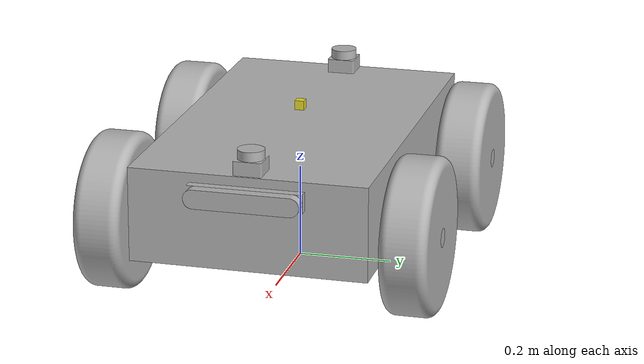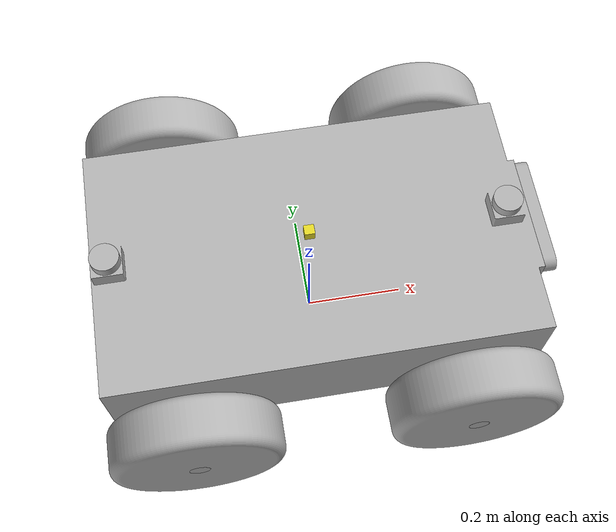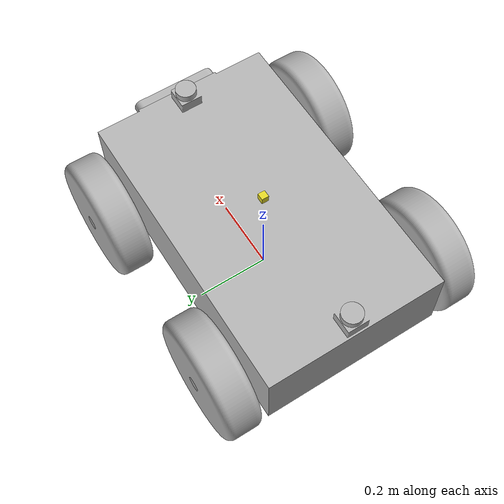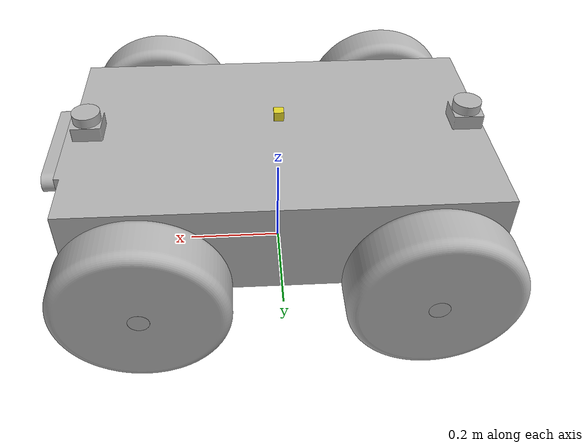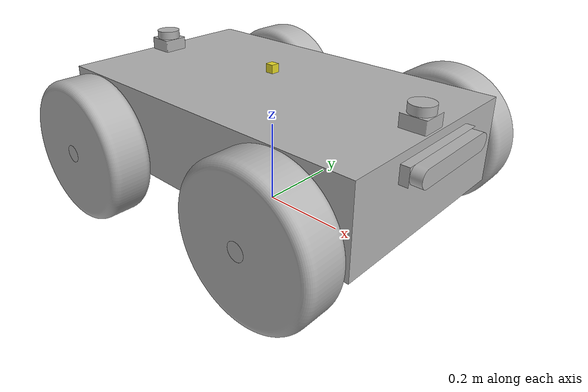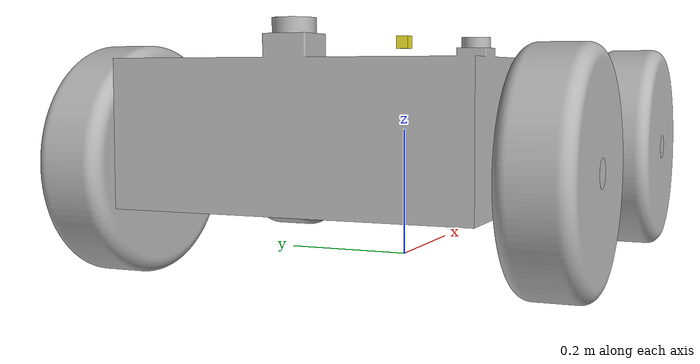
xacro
<?xml version="1.0" ?>
<robot name="susag_updated_model" xmlns:xacro="http://www.ros.org/wiki/xacro">

<xacro:include filename="$(find susag_updated_model_description)/urdf/materials.xacro" />
<xacro:include filename="$(find susag_updated_model_description)/urdf/susag_updated_model.trans" />
<xacro:include filename="$(find susag_updated_model_description)/urdf/susag_updated_model.gazebo" />
<link name="base_link">
  <inertial>
    <origin xyz="0.0009712747698901402 0.0 0.21010916566289983" rpy="0 0 0"/>
    <mass value="2.0"/>
    <inertia ixx="10.229874" iyy="13.7797" izz="16.621337" ixy="0.0" iyz="-0.0" ixz="-0.102671"/>
  </inertial>
  <visual>
    <origin xyz="0 0 0" rpy="0 0 0"/>
    <geometry>
      <mesh filename="file://$(find susag_updated_model_description)/meshes/base_link.stl" scale="0.001 0.001 0.001"/>
    </geometry>
    <material name="silver"/>
  </visual>
  <collision>
    <origin xyz="0 0 0" rpy="0 0 0"/>
    <geometry>
      <mesh filename="file://$(find susag_updated_model_description)/meshes/base_link.stl" scale="0.001 0.001 0.001"/>
    </geometry>
  </collision>
</link>

<link name="rear_right_wheel_1">
  <inertial>
    <origin xyz="-3.1807889655510735e-14 0.04999999999999999 -5.551115123125783e-17" rpy="0 0 0"/>
    <mass value="4.0"/>
    <inertia ixx="0.033244" iyy="0.061555" izz="0.033244" ixy="0.0" iyz="-0.0" ixz="0.0"/>
  </inertial>
  <visual>
    <origin xyz="0.2665 0.37 -0.165" rpy="0 0 0"/>
    <geometry>
      <mesh filename="file://$(find susag_updated_model_description)/meshes/rear_right_wheel_1.stl" scale="0.001 0.001 0.001"/>
    </geometry>
    <material name="silver"/>
  </visual>
  <collision>
    <origin xyz="0.2665 0.37 -0.165" rpy="0 0 0"/>
    <geometry>
      <mesh filename="file://$(find susag_updated_model_description)/meshes/rear_right_wheel_1.stl" scale="0.001 0.001 0.001"/>
    </geometry>
  </collision>
</link>

<link name="front_right_wheel_1">
  <inertial>
    <origin xyz="8.718026300869042e-14 0.024999999999999967 0.0" rpy="0 0 0"/>
    <mass value="4.0"/>
    <inertia ixx="0.033244" iyy="0.061555" izz="0.033244" ixy="-0.0" iyz="-0.0" ixz="0.0"/>
  </inertial>
  <visual>
    <origin xyz="-0.2665 0.37 -0.165" rpy="0 0 0"/>
    <geometry>
      <mesh filename="file://$(find susag_updated_model_description)/meshes/front_right_wheel_1.stl" scale="0.001 0.001 0.001"/>
    </geometry>
    <material name="silver"/>
  </visual>
  <collision>
    <origin xyz="-0.2665 0.37 -0.165" rpy="0 0 0"/>
    <geometry>
      <mesh filename="file://$(find susag_updated_model_description)/meshes/front_right_wheel_1.stl" scale="0.001 0.001 0.001"/>
    </geometry>
  </collision>
</link>

<link name="front_left_wheel_1">
  <inertial>
    <origin xyz="8.718026300869042e-14 -0.025000000000000078 0.0" rpy="0 0 0"/>
    <mass value="4.0"/>
    <inertia ixx="0.033244" iyy="0.061555" izz="0.033244" ixy="-0.0" iyz="-0.0" ixz="0.0"/>
  </inertial>
  <visual>
    <origin xyz="-0.2665 -0.37 -0.165" rpy="0 0 0"/>
    <geometry>
      <mesh filename="file://$(find susag_updated_model_description)/meshes/front_left_wheel_1.stl" scale="0.001 0.001 0.001"/>
    </geometry>
    <material name="silver"/>
  </visual>
  <collision>
    <origin xyz="-0.2665 -0.37 -0.165" rpy="0 0 0"/>
    <geometry>
      <mesh filename="file://$(find susag_updated_model_description)/meshes/front_left_wheel_1.stl" scale="0.001 0.001 0.001"/>
    </geometry>
  </collision>
</link>

<link name="rear_left_wheel_1">
  <inertial>
    <origin xyz="-3.186340080674199e-14 -0.04999999999999999 -5.551115123125783e-17" rpy="0 0 0"/>
    <mass value="4.0"/>
    <inertia ixx="0.033244" iyy="0.061555" izz="0.033244" ixy="0.0" iyz="-0.0" ixz="0.0"/>
  </inertial>
  <visual>
    <origin xyz="0.2665 -0.37 -0.165" rpy="0 0 0"/>
    <geometry>
      <mesh filename="file://$(find susag_updated_model_description)/meshes/rear_left_wheel_1.stl" scale="0.001 0.001 0.001"/>
    </geometry>
    <material name="silver"/>
  </visual>
  <collision>
    <origin xyz="0.2665 -0.37 -0.165" rpy="0 0 0"/>
    <geometry>
      <mesh filename="file://$(find susag_updated_model_description)/meshes/rear_left_wheel_1.stl" scale="0.001 0.001 0.001"/>
    </geometry>
  </collision>
</link>

<link name="real_sense_1">
  <inertial>
    <origin xyz="0.012500000000000011 0.0 0.0" rpy="0 0 0"/>
    <mass value="0.1"/>
    <inertia ixx="0.008377" iyy="0.000329" izz="0.008237" ixy="0.0" iyz="0.0" ixz="-0.0"/>
  </inertial>
  <visual>
    <origin xyz="-0.436 -0.0 -0.27" rpy="0 0 0"/>
    <geometry>
      <mesh filename="file://$(find susag_updated_model_description)/meshes/real_sense_1.stl" scale="0.001 0.001 0.001"/>
    </geometry>
    <material name="silver"/>
  </visual>
  <collision>
    <origin xyz="-0.436 -0.0 -0.27" rpy="0 0 0"/>
    <geometry>
      <mesh filename="file://$(find susag_updated_model_description)/meshes/real_sense_1.stl" scale="0.001 0.001 0.001"/>
    </geometry>
  </collision>
</link>

<link name="rear_lidar_1">
  <inertial>
    <origin xyz="0.0 0.0 0.009999999999999898" rpy="0 0 0"/>
    <mass value="0.1"/>
    <inertia ixx="8.9e-05" iyy="8.9e-05" izz="0.000152" ixy="-0.0" iyz="0.0" ixz="0.0"/>
  </inertial>
  <visual>
    <origin xyz="0.381 -0.0 -0.34" rpy="0 0 0"/>
    <geometry>
      <mesh filename="file://$(find susag_updated_model_description)/meshes/rear_lidar_1.stl" scale="0.001 0.001 0.001"/>
    </geometry>
    <material name="silver"/>
  </visual>
  <collision>
    <origin xyz="0.381 -0.0 -0.34" rpy="0 0 0"/>
    <geometry>
      <mesh filename="file://$(find susag_updated_model_description)/meshes/rear_lidar_1.stl" scale="0.001 0.001 0.001"/>
    </geometry>
  </collision>
</link>

<link name="front_lidar_1">
  <inertial>
    <origin xyz="5.6773423184885985e-09 -5.7697137078703364e-18 0.009999999999999953" rpy="0 0 0"/>
    <mass value="0.1"/>
    <inertia ixx="8.9e-05" iyy="8.9e-05" izz="0.000152" ixy="-0.0" iyz="0.0" ixz="-0.0"/>
  </inertial>
  <visual>
    <origin xyz="-0.381 -0.0 -0.34" rpy="0 0 0"/>
    <geometry>
      <mesh filename="file://$(find susag_updated_model_description)/meshes/front_lidar_1.stl" scale="0.001 0.001 0.001"/>
    </geometry>
    <material name="silver"/>
  </visual>
  <collision>
    <origin xyz="-0.381 -0.0 -0.34" rpy="0 0 0"/>
    <geometry>
      <mesh filename="file://$(find susag_updated_model_description)/meshes/front_lidar_1.stl" scale="0.001 0.001 0.001"/>
    </geometry>
  </collision>
</link>

<link name="imu_link">
  <inertial>
    <mass value="0.01"/>
    <origin xyz="0 0 0" rpy="0 0 0"/>
    <inertia ixx="1e-6" ixy="0" ixz="0" iyy="1e-6" iyz="0" izz="1e-6"/>
  </inertial>
  <visual>
    <origin xyz="0 0 0" rpy="0 0 0"/>
    <geometry>
      <box size="0.02 0.02 0.01"/>
    </geometry>
    <material name="silver"/>
  </visual>
  <collision>
    <origin xyz="0 0 0" rpy="0 0 0"/>
    <geometry>
      <box size="0.02 0.02 0.01"/>
    </geometry>
  </collision>
</link>

<link name="laser_center_link">
  <inertial>
    <mass value="0.001"/>
    <origin xyz="0 0 0" rpy="0 0 0"/>
    <inertia ixx="1e-6" ixy="0" ixz="0" iyy="1e-6" iyz="0" izz="1e-6"/>
  </inertial>
  <visual>
    <origin xyz="0 0 0" rpy="0 0 0"/>
    <geometry>
      <box size="0.02 0.02 0.02"/>
    </geometry>
    <material name="yellow"/>
  </visual>
  <collision>
    <origin xyz="0 0 0" rpy="0 0 0"/>
    <geometry>
      <box size="0.02 0.02 0.02"/>
    </geometry>
  </collision>
</link>

<joint name="rear_wheel_right_joint" type="continuous">
  <origin xyz="-0.2665 -0.37 0.165" rpy="0 0 0"/>
  <parent link="base_link"/>
  <child link="rear_right_wheel_1"/>
  <axis xyz="0.0 1.0 0.0"/>
</joint>

<joint name="front_wheel_right_joint" type="continuous">
  <origin xyz="0.2665 -0.37 0.165" rpy="0 0 0"/>
  <parent link="base_link"/>
  <child link="front_right_wheel_1"/>
  <axis xyz="0.0 1.0 0.0"/>
</joint>

<joint name="front_wheel_left_joint" type="continuous">
  <origin xyz="0.2665 0.37 0.165" rpy="0 0 0"/>
  <parent link="base_link"/>
  <child link="front_left_wheel_1"/>
  <axis xyz="0.0 1.0 0.0"/>
</joint>

<joint name="rear_wheel_left_joint" type="continuous">
  <origin xyz="-0.2665 0.37 0.165" rpy="0 0 0"/>
  <parent link="base_link"/>
  <child link="rear_left_wheel_1"/>
  <axis xyz="0.0 1.0 0.0"/>
</joint>

<joint name="real_sense_joint" type="fixed">
  <origin xyz="0.436 0.0 0.27" rpy="0 0 0"/>
  <parent link="base_link"/>
  <child link="real_sense_1"/>
</joint>

<joint name="lidar_rear_joint" type="fixed">
  <origin xyz="-0.381 0.0 0.34" rpy="0 0 ${pi}"/>
  <parent link="base_link"/>
  <child link="rear_lidar_1"/>
</joint>

<joint name="lidar_front_joint" type="fixed">
  <origin xyz="0.381 0.0 0.34" rpy="0 0 0"/>
  <parent link="base_link"/>
  <child link="front_lidar_1"/>
</joint>

<joint name="laser_center_joint" type="fixed">
  <origin xyz="0 0 0.34" rpy="0 0 0"/>
  <parent link="base_link"/>
  <child link="laser_center_link"/>
</joint>

<joint name="imu_joint" type="fixed">
  <origin xyz="-0.381 0.02 0.24" rpy="0 0 0"/>
  <parent link="base_link"/>
  <child link="imu_link"/>
</joint>

</robot>

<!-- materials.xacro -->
<robot name="susag_updated_model" xmlns:xacro="http://www.ros.org/wiki/xacro" >

<material name="silver">
  <color rgba="0.700 0.700 0.700 1.000"/>
</material>

</robot>

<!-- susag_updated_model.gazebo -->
<robot name="susag_updated_model" xmlns:xacro="http://www.ros.org/wiki/xacro" >

<xacro:property name="body_color" value="Gazebo/Silver" />
<xacro:property name="wheel_color" value="Gazebo/Black" />
<xacro:property name="lidar_color" value="Gazebo/Yellow" />
<xacro:property name="camera_color" value="Gazebo/Red" />

<gazebo>
  <plugin name="control" filename="libgazebo_ros_control.so"/>
</gazebo>
<gazebo reference="base_link">
  <material>${body_color}</material>
  <mu1>0</mu1>
  <mu2>0</mu2>
  <self_collide>true</self_collide>
  <gravity>true</gravity>
</gazebo>

<gazebo reference="rear_right_wheel_1">
  <material>${wheel_color}</material>
  <mu1>40</mu1>
  <mu2>40</mu2>
  <self_collide>true</self_collide>
</gazebo>

<gazebo reference="front_right_wheel_1">
  <material>${wheel_color}</material>
  <mu1>40</mu1>
  <mu2>40</mu2>
  <self_collide>true</self_collide>
</gazebo>

<gazebo reference="front_left_wheel_1">
  <material>${wheel_color}</material>
  <mu1>40</mu1>
  <mu2>40</mu2>
  <self_collide>true</self_collide>
</gazebo>

<gazebo reference="rear_left_wheel_1">
  <material>${wheel_color}</material>
  <mu1>40</mu1>
  <mu2>40</mu2>
  <self_collide>true</self_collide>
</gazebo>

<gazebo reference="real_sense_1">
  <material>${camera_color}</material>
  <mu1>0</mu1>
  <mu2>0</mu2>
  <self_collide>true</self_collide>
</gazebo>

<gazebo reference="rear_lidar_1">
  <material>${lidar_color}</material>
  <mu1>0</mu1>
  <mu2>0</mu2>
  <self_collide>true</self_collide>
</gazebo>

<gazebo reference="front_lidar_1">
  <material>${lidar_color}</material>
  <mu1>0</mu1>
  <mu2>0</mu2>
  <self_collide>true</self_collide>
</gazebo>

<gazebo>
  <plugin name="diff_drive" filename="libgazebo_ros_diff_drive.so">
    <update_rate>1000</update_rate>
    <num_wheel_pairs>2</num_wheel_pairs>

    <!-- LEFT side -->
    <left_joint>front_wheel_left_joint</left_joint>
    <left_joint>rear_wheel_left_joint</left_joint>

    <!-- RIGHT side -->
    <right_joint>front_wheel_right_joint</right_joint>
    <right_joint>rear_wheel_right_joint</right_joint>

    <wheel_separation>0.74</wheel_separation>
    <wheel_diameter>0.33</wheel_diameter>

    <wheel_separation>0.74</wheel_separation>
    <wheel_diameter>0.33</wheel_diameter>

    <!-- Limits-->
    <max_wheel_torque>40</max_wheel_torque>
    <max_wheel_acceleration>4.0</max_wheel_acceleration>

    <!-- Outputs -->
    <publish_odom>true</publish_odom>
    <publish_odom_tf>true</publish_odom_tf>
    <publish_wheel_tf>true</publish_wheel_tf>

    <odometry_frame>odom</odometry_frame>
    <robot_base_frame>base_link</robot_base_frame>
  </plugin>
</gazebo>

<!-- front lidar -->
<gazebo reference="front_lidar_1">
  <sensor type="ray" name="front_lidar_sensor">
    <pose>0 0 0 0 0 0</pose>
    <update_rate>30</update_rate>
    <visualize>true</visualize>

    <ray>
      <scan>
        <horizontal>
          <samples>720</samples>
          <resolution>1</resolution>
          <min_angle>-1.57079632679</min_angle>
          <max_angle>1.57079632679</max_angle>
        </horizontal>
      </scan>

      <range>
        <min>0.1</min>
        <max>12.0</max>
        <resolution>0.01</resolution>
      </range>
      <noise>
        <type>gaussian</type>
        <mean>0.0</mean>
        <stddev>0.02</stddev>
      </noise>
    </ray>

    <plugin name="gazebo_ros_lidar_front" filename="libgazebo_ros_ray_sensor.so">
      <ros>
        <!-- publish to /front_scan so the merger (params.yaml scanTopic1) can fuse
             it with /rear_scan; the merged 360 deg scan is republished on /scan -->
        <remapping>~/out:=front_scan</remapping>
      </ros>
      <output_type>sensor_msgs/LaserScan</output_type>
      <frame_name>front_lidar_1</frame_name>
    </plugin>
  </sensor>
</gazebo>

<!-- rear lidar -->
<gazebo reference="rear_lidar_1">
  <sensor type="ray" name="rear_lidar_sensor">
    <pose>0 0 0 0 0 0</pose>
    <update_rate>30</update_rate>
    <visualize>true</visualize>

    <ray>
      <scan>
        <horizontal>
          <samples>720</samples>
          <resolution>1</resolution>
          <min_angle>-1.57079632679</min_angle>
          <max_angle>1.57079632679</max_angle>
        </horizontal>
      </scan>

      <range>
        <min>0.1</min>
        <max>12.0</max>
        <resolution>0.01</resolution>
      </range>
      <noise>
        <type>gaussian</type>
        <mean>0.0</mean>
        <stddev>0.02</stddev>
      </noise>
    </ray>

    <plugin name="gazebo_ros_lidar_rear" filename="libgazebo_ros_ray_sensor.so">
      <ros>
        <remapping>~/out:=rear_scan</remapping>
      </ros>
      <output_type>sensor_msgs/LaserScan</output_type>
      <frame_name>rear_lidar_1</frame_name>
    </plugin>
  </sensor>
</gazebo>

<!-- D435-like depth camera -->
<gazebo reference="real_sense_1">
  <sensor type="depth" name="depth_camera_sensor">
    <update_rate>30</update_rate>            <!-- 30 Hz typical -->
    <always_on>1</always_on>
    <pose>0 0 0 0 0 0</pose>

    <camera name="depth_camera">
      <!-- 86–87° H-FOV ≈ 1.50 rad (your 60° = 1.047 was too narrow) -->
      <horizontal_fov>1.50</horizontal_fov>

      <!-- Use a 16:9 depth mode like the real camera -->
      <image>
        <width>1280</width>                  <!-- or 848 for lighter sim -->
        <height>720</height>                 <!-- 1280x720 matches spec -->
        <format>R8G8B8</format>              <!-- color buffer format (ok) -->
      </image>

      <!-- Clip to realistic working range -->
      <clip>
        <!-- D435 Min-Z ~0.28 m @ max res; use 0.1–0.28 if you need closer -->
        <near>0.28</near>
        <far>10.0</far>                      <!-- workable long range -->
      </clip>

      <!-- Keep depth imager distortion off; Gazebo pinhole model -->
      <distortion>
        <k1>0.0</k1><k2>0.0</k2><k3>0.0</k3>
        <p1>0.0</p1><p2>0.0</p2>
        <center>0.5 0.5</center>
      </distortion>
    </camera>

    <plugin name="depth_camera_plugin" filename="libgazebo_ros_camera.so">
      <ros>
        <namespace>susag</namespace>
        <remapping>~/image:=/image_raw</remapping>
        <remapping>~/camera_info:=/camera_info</remapping>
        <remapping>~/depth_image:=/depth/image_raw</remapping>
        <remapping>~/points:=depth_camera/points</remapping>
      </ros>

      <camera_name>depth_camera</camera_name>
      <frame_name>real_sense_1</frame_name>

      <!-- Set the real stereo baseline (was 0.07 m) -->
      <hack_baseline>0.05</hack_baseline>

      <min_depth>0.28</min_depth>
    </plugin>

    <!-- Optional noise to mimic <~2% error @ 2 m -->
    <noise>
      <type>gaussian</type>
      <mean>0.0</mean>
      <!-- 2% of 2 m ≈ 4 cm; scale down for sim stability -->
      <stddev>0.02</stddev>   <!-- meters of depth noise; tune 0.005–0.02 -->
    </noise>
  </sensor>
</gazebo>

</robot>
